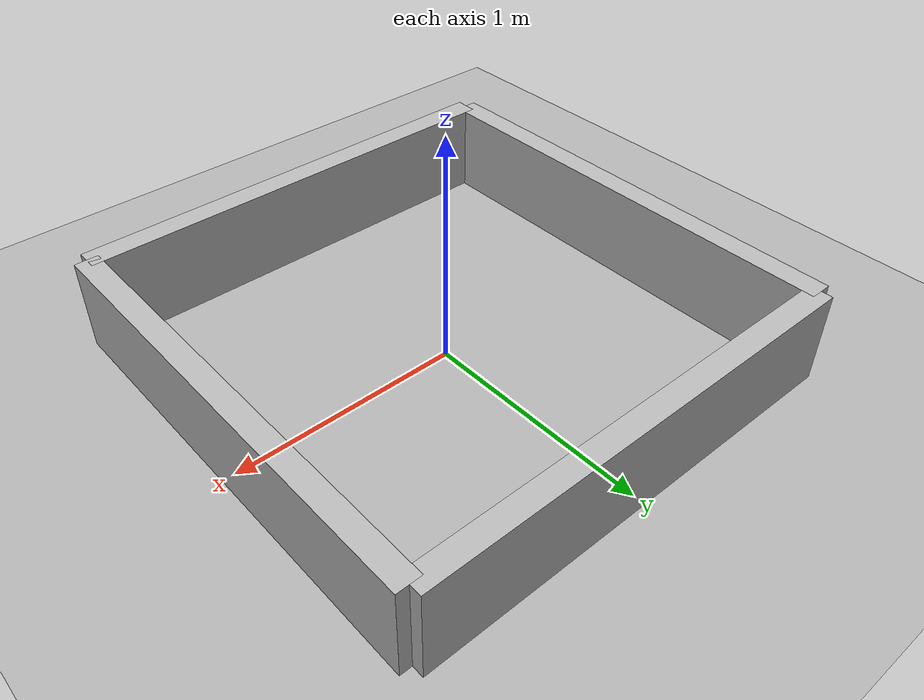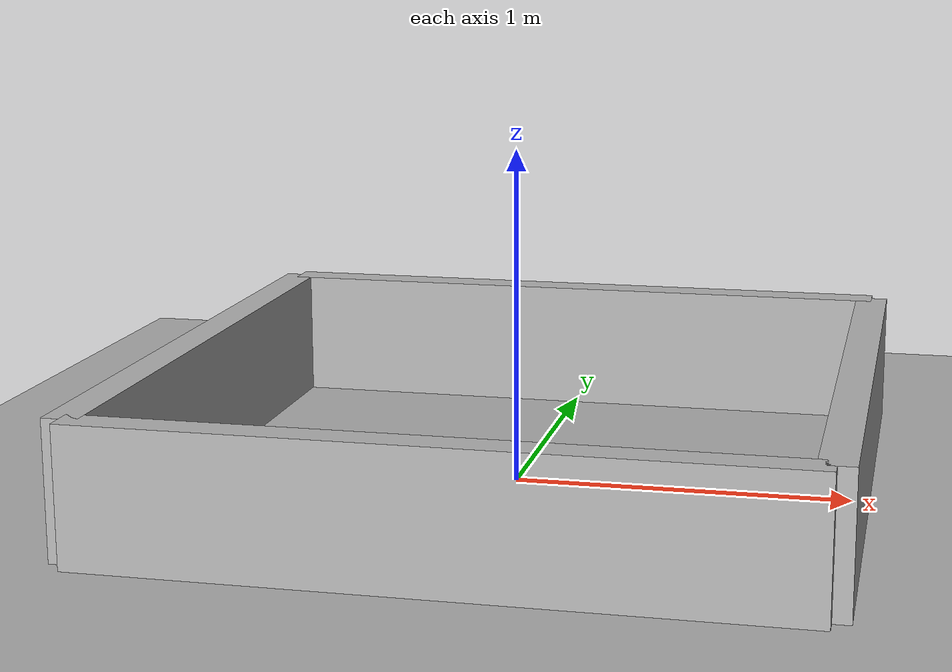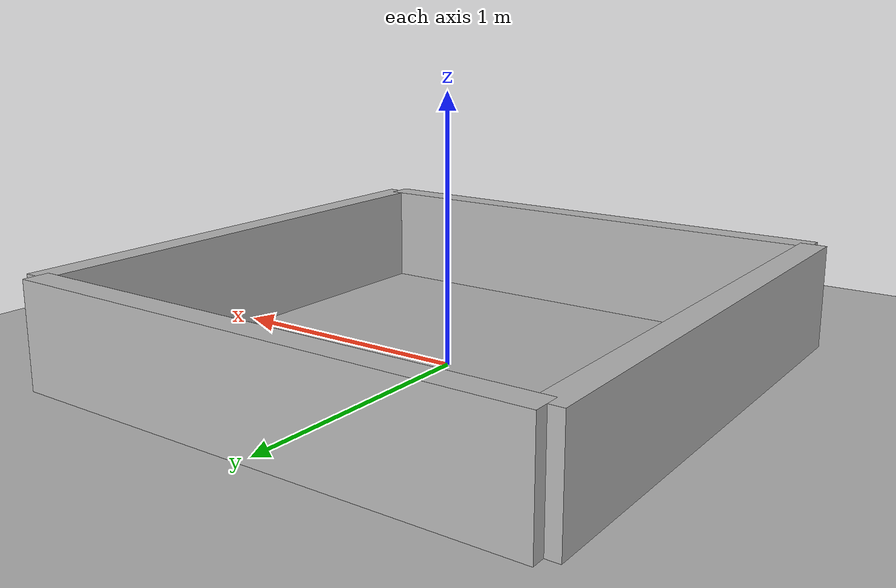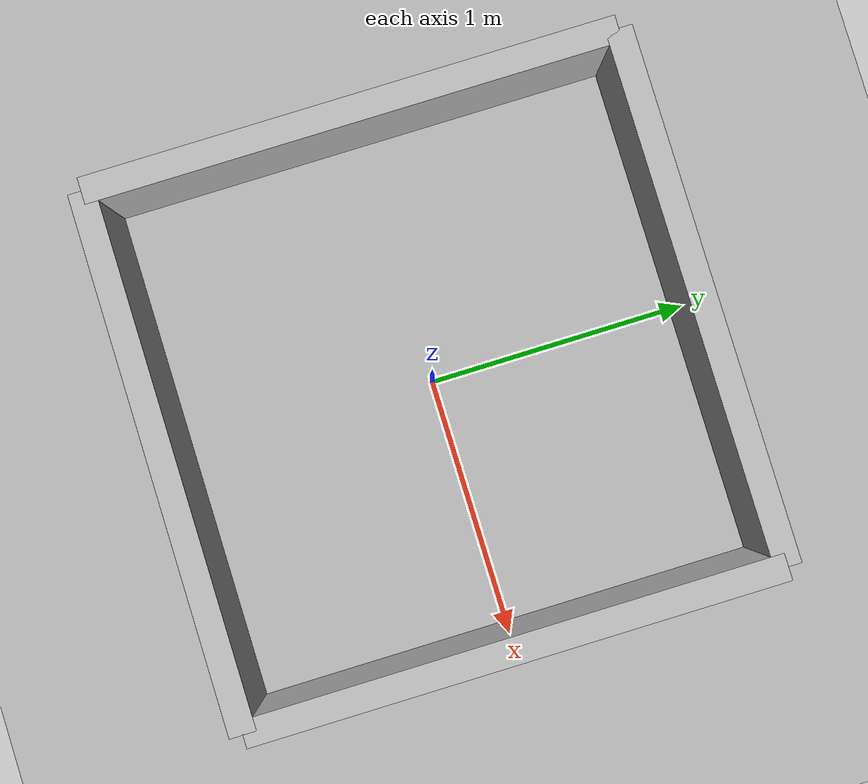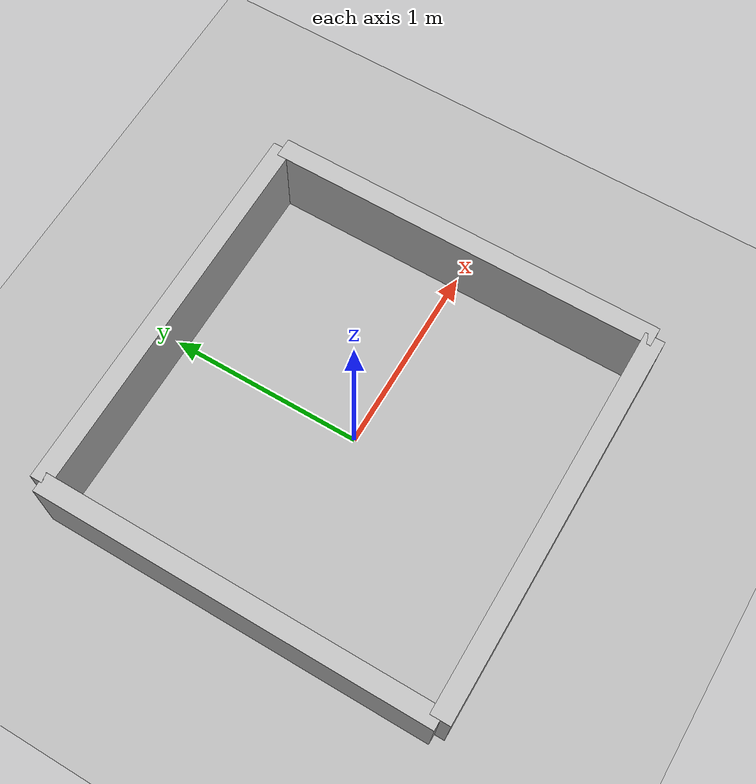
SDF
<?xml version="1.0"?>
<sdf version="1.7">
  <world name="default">

    <!-- ROS state plugin -->
    <plugin name="gazebo_ros_state" filename="libgazebo_ros_state.so"/>

    <!-- Light (as in your template) -->
    <light name="sun" type="directional">
      <cast_shadows>1</cast_shadows>
      <pose>0 0 10 0 0 0</pose>
      <diffuse>0.8 0.8 0.8 1</diffuse>
      <specular>0.2 0.2 0.2 1</specular>
      <attenuation>
        <range>1000</range>
        <constant>0.9</constant>
        <linear>0.01</linear>
        <quadratic>0.001</quadratic>
      </attenuation>
      <direction>-0.5 0.1 -0.9</direction>
      <spot>
        <inner_angle>0</inner_angle>
        <outer_angle>0</outer_angle>
        <falloff>0</falloff>
      </spot>
    </light>

    <!-- Perfectly flat, high-grip ground plane -->
    <model name="ground_plane">
      <static>1</static>
      <link name="link">
        <collision name="collision">
          <geometry>
            <plane>
              <normal>0 0 1</normal>
              <size>2 2</size>
            </plane>
          </geometry>
          <surface>
            <friction>
              <ode>
                <mu>1000</mu>
                <mu2>1000</mu2>
                <slip1>0.0</slip1>
                <slip2>0.0</slip2>
              </ode>
              <torsional>
                <coefficient>1.0</coefficient>
                <use_patch_radius>true</use_patch_radius>
                <patch_radius>0.05</patch_radius>
                <surface_radius>0.05</surface_radius>
                <ode/>
              </torsional>
            </friction>
            <contact>
              <ode>
                <kp>1e7</kp>
                <kd>1e3</kd>
                <max_vel>0.1</max_vel>
                <min_depth>0.001</min_depth>
              </ode>
            </contact>
            <bounce>
              <restitution_coefficient>0.0</restitution_coefficient>
              <threshold>1e6</threshold>
            </bounce>
          </surface>
          <max_contacts>20</max_contacts>
        </collision>
        <visual name="visual">
          <cast_shadows>0</cast_shadows>
          <geometry>
            <plane>
              <normal>0 0 1</normal>
              <size>2 2</size>
            </plane>
          </geometry>
          <material>
            <ambient>0.7 0.7 0.7 1</ambient>
            <diffuse>0.7 0.7 0.7 1</diffuse>
            <specular>0 0 0 1</specular>
            <emissive>0 0 0 1</emissive>
          </material>
        </visual>
        <self_collide>0</self_collide>
        <enable_wind>0</enable_wind>
        <kinematic>0</kinematic>
      </link>
    </model>

    <!-- Environment -->
    <gravity>0 0 -9.8</gravity>
    <magnetic_field>6e-06 2.3e-05 -4.2e-05</magnetic_field>
    <atmosphere type="adiabatic"/>

    <!-- Physics -->
    <physics type="ode" name="template_like_ode">
      <max_step_size>0.001</max_step_size>
      <real_time_factor>5</real_time_factor>
      <real_time_update_rate>1000</real_time_update_rate>
      <ode>
        <solver>
          <type>quick</type>
          <iters>100</iters>
          <sor>1.3</sor>
        </solver>
        <constraints>
          <cfm>0.0</cfm>
          <erp>0.2</erp>
        </constraints>
      </ode>
    </physics>

    <scene>
      <ambient>0.4 0.4 0.4 1</ambient>
      <background>0.7 0.7 0.7 1</background>
      <shadows>1</shadows>
    </scene>

    <wind/>

    <spherical_coordinates>
      <surface_model>EARTH_WGS84</surface_model>
      <latitude_deg>0</latitude_deg>
      <longitude_deg>0</longitude_deg>
      <elevation>0</elevation>
      <heading_deg>0</heading_deg>
    </spherical_coordinates>

    <!-- Square room: 2 m x 2 m inside, 0.1 m thick, 0.4 m tall (Z center 0.20) -->
    <model name="wall_north">
      <static>1</static>
      <link name="link">
        <pose>0 1.0 0.20 0 0 0</pose>
        <collision name="collision">
          <geometry><box><size>2.0 0.1 0.4</size></box></geometry>
        </collision>
        <visual name="visual">
          <geometry><box><size>2.0 0.1 0.4</size></box></geometry>
        </visual>
      </link>
    </model>

    <model name="wall_south">
      <static>1</static>
      <link name="link">
        <pose>0 -1.0 0.20 0 0 0</pose>
        <collision name="collision">
          <geometry><box><size>2.0 0.1 0.4</size></box></geometry>
        </collision>
        <visual name="visual">
          <geometry><box><size>2.0 0.1 0.4</size></box></geometry>
        </visual>
      </link>
    </model>

    <model name="wall_east">
      <static>1</static>
      <link name="link">
        <pose>1.0 0 0.20 0 0 0</pose>
        <collision name="collision">
          <geometry><box><size>0.1 2.0 0.4</size></box></geometry>
        </collision>
        <visual name="visual">
          <geometry><box><size>0.1 2.0 0.4</size></box></geometry>
        </visual>
      </link>
    </model>

    <model name="wall_west">
      <static>1</static>
      <link name="link">
        <pose>-1.0 0 0.20 0 0 0</pose>
        <collision name="collision">
          <geometry><box><size>0.1 2.0 0.4</size></box></geometry>
        </collision>
        <visual name="visual">
          <geometry><box><size>0.1 2.0 0.4</size></box></geometry>
        </visual>
      </link>
    </model>

    <!-- GUI: built-in top-down camera -->
    <gui fullscreen="0">
      <camera name="user_camera">
        <pose>0 0 3 0 1.5708 0</pose>
        <view_controller>orbit</view_controller>
        <projection_type>perspective</projection_type>
      </camera>
    </gui>

  </world>
</sdf>
